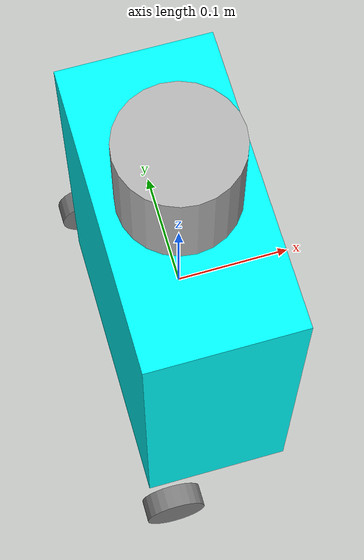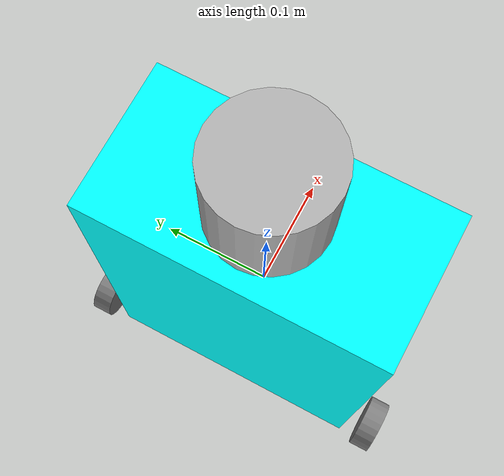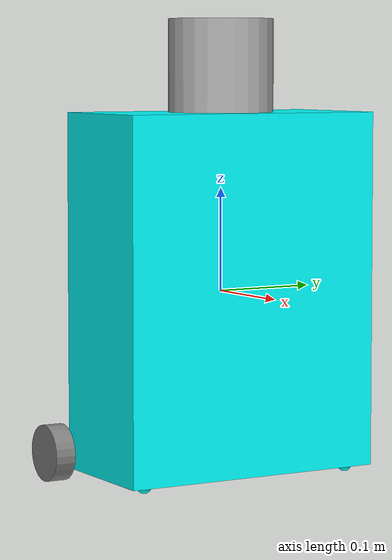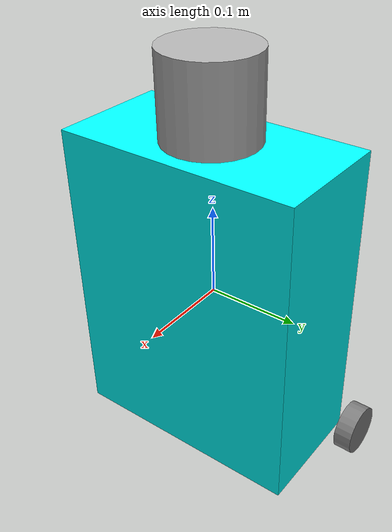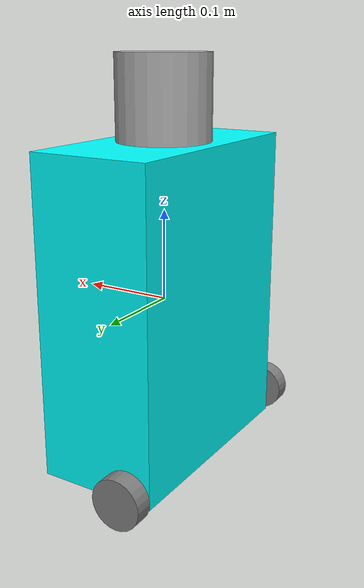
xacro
<?xml version="1.0"?>
<robot name="diff_drive" xmlns:xacro="http://ros.org/wiki/xacro">

  <!-- Define robot constants -->
  <xacro:property name="base_width" value="0.265"/>
  <xacro:property name="base_length" value="0.133"/>
  <xacro:property name="base_height" value="0.347"/>

  <xacro:property name="wheel_radius" value="0.02735"/>
  <xacro:property name="wheel_width" value="0.02"/>
  <xacro:property name="wheel_ygap" value="0.025"/>
  <xacro:property name="wheel_zoff" value="0.02"/>
  <xacro:property name="wheel_xoff" value="0.05"/>

  <xacro:property name="caster_xoff" value="0.05"/>
  <xacro:property name="caster_yoff" value="0.02"/>

  <!-- Define some commonly used intertial properties  -->
  <xacro:macro name="box_inertia" params="m w h d">
    <inertial>
      <origin xyz="0 0 0" rpy="${pi/2} 0 ${pi/2}"/>
      <mass value="${m}"/>
      <inertia ixx="${(m/12) * (h*h + d*d)}" ixy="0.0" ixz="0.0" iyy="${(m/12) * (w*w + d*d)}" iyz="0.0" izz="${(m/12) * (w*w + h*h)}"/>
    </inertial>
  </xacro:macro>

  <xacro:macro name="cylinder_inertia" params="m r h">
    <inertial>
      <origin xyz="0 0 0" rpy="${pi/2} 0 0" />
      <mass value="${m}"/>
      <inertia ixx="${(m/12) * (3*r*r + h*h)}" ixy = "0" ixz = "0" iyy="${(m/12) * (3*r*r + h*h)}" iyz = "0" izz="${(m/2) * (r*r)}"/>
    </inertial>
  </xacro:macro>

  <xacro:macro name="sphere_inertia" params="m r">
    <inertial>
      <mass value="${m}"/>
      <inertia ixx="${(2/5) * m * (r*r)}" ixy="0.0" ixz="0.0" iyy="${(2/5) * m * (r*r)}" iyz="0.0" izz="${(2/5) * m * (r*r)}"/>
    </inertial>
  </xacro:macro>

  <!-- Robot Base -->
  <link name="base_link">
    <visual>
      <geometry>
        <box size="${base_length} ${base_width} ${base_height}"/>
      </geometry>
      <material name="Cyan">
        <color rgba="0 1.0 1.0 1.0"/>
      </material>
    </visual>

    <collision>
      <geometry>
        <box size="${base_length} ${base_width} ${base_height}"/>
      </geometry>
    </collision>

    <xacro:box_inertia m="30" w="${base_width}" d="${base_length}" h="${base_height}"/>
  </link>

   <!-- Robot Footprint -->
  <link name="base_footprint">
  	<xacro:box_inertia m="0" w="0" d="0" h="0"/>
  </link>

  <joint name="base_joint" type="fixed">
    <parent link="base_link"/>
    <child link="base_footprint"/>
    <origin xyz="0.0 0.0 ${-(wheel_radius+wheel_zoff)}" rpy="0 0 0"/>
  </joint>

  <!-- Wheels -->
  <xacro:macro name="wheel" params="prefix x_reflect y_reflect">
    <link name="${prefix}_link">
      <visual>
        <origin xyz="0 0 0" rpy="${pi/2} 0 0"/>
        <geometry>
            <cylinder radius="${wheel_radius}" length="${wheel_width}"/>
        </geometry>
        <material name="Gray">
          <color rgba="0.5 0.5 0.5 1.0"/>
        </material>
      </visual>

      <collision>
        <origin xyz="0 0 0" rpy="${pi/2} 0 0"/>
        <geometry>
          <cylinder radius="${wheel_radius}" length="${wheel_width}"/>
        </geometry>
      </collision>

      <xacro:cylinder_inertia m="0.5" r="${wheel_radius}" h="${wheel_width}"/>
    </link>

    <joint name="${prefix}_joint" type="continuous">
      <parent link="base_link"/>
      <child link="${prefix}_link"/>
      <origin xyz="${x_reflect*wheel_xoff} ${y_reflect*(base_width/2+wheel_ygap)} ${-base_height/2+wheel_zoff}" rpy="0 0 0"/>
      <axis xyz="0 1 0"/>
    </joint>
  </xacro:macro>

  <xacro:wheel prefix="drivewhl_l" x_reflect="-1" y_reflect="1" />
  <xacro:wheel prefix="drivewhl_r" x_reflect="-1" y_reflect="-1" />

  <xacro:macro name="caster" params="prefix y_reflect">
    <link name="${prefix}_caster">
      <visual>
        <geometry>
          <sphere radius="${wheel_radius-wheel_zoff}"/>
        </geometry>
        <material name="Cyan">
          <color rgba="0 1.0 1.0 1.0"/>
        </material>
      </visual>

      <collision>
        <origin xyz="0 0 0" rpy="0 0 0"/>
        <geometry>
          <sphere radius="${wheel_radius-wheel_zoff}"/>
        </geometry>
        <surface>
          <friction>
            <mu>0</mu>
            <mu2>0</mu2>
          </friction>
        </surface>
      </collision>

      <xacro:sphere_inertia m="0.5" r="${wheel_radius-wheel_zoff}"/>
    </link>

    <joint name="${prefix}_caster_joint" type="continuous">
      <parent link="base_link"/>
      <child link="${prefix}_caster"/>
      <origin xyz="${caster_xoff} ${y_reflect*(base_width/2-caster_yoff)} ${-(base_height/2)}" rpy="0 0 0"/>
      <axis xyz="0 1 0"/>
    </joint>

  </xacro:macro>

  <xacro:caster prefix="left" y_reflect="-1" />
  <xacro:caster prefix="right" y_reflect="1" />

  <gazebo>
    <plugin name='diff_drive_contrl' filename='libgazebo_ros_diff_drive.so'>
      <ros>
        <namespace></namespace>
      </ros>

      <always_on>true</always_on>

      <updateRate>100</updateRate>
      <commandTopic>cmd_vel</commandTopic>

      <publishTf>true</publishTf>

      <!-- about odometry parameter-->
      <publishWheelTF>false</publishWheelTF>
      <publishWheelJointState>true</publishWheelJointState>
      <odometryTopic>odom</odometryTopic>

      <!-- wheels -->
      <leftJoint>drivewhl_l_joint</leftJoint>
      <rightJoint>drivewhl_r_joint</rightJoint>

      <!-- kinematics -->
      <wheelSeparation>0.4</wheelSeparation>
      <wheelDiameter>0.2</wheelDiameter>

      <!-- limits -->
      <wheelAcceleration>3</wheelAcceleration>
      <wheelTorque>50</wheelTorque>

      <!-- output -->
      <publish_odom>true</publish_odom>
      <publishOdomTF>false</publishOdomTF>
      <publishWheelTF>false</publishWheelTF>

      <odometryFrame>robot/odom</odometryFrame>
      <robotBaseFrame>robot/base_footprint</robotBaseFrame>

      <gaussianNoise>0.1</gaussianNoise>

    </plugin>

  </gazebo>

  <!-- setting up imu -->
  <link name="imu_link">
    <visual>
      <geometry>
        <box size="0.1 0.1 0.1"/>
      </geometry>
    </visual>

    <collision>
      <geometry>
        <box size="0.1 0.1 0.1"/>
      </geometry>
    </collision>

    <xacro:box_inertia m="0.1" w="0.1" d="0.1" h="0.1"/>
  </link>

  <joint name="imu_joint" type="fixed">
    <parent link="base_link"/>
    <child link="imu_link"/>
    <origin xyz="0 0 0.01"/>
  </joint>

  <gazebo reference="imu_link">
    <sensor type="imu" name="imu1">
      <plugin filename="libgazebo_ros_imu_sensor.so" name="imu_plugin">
        <topicName>imu</topicName>
        <bodyName>imu_link</bodyName>
        <updateRateHZ>10.0</updateRateHZ>
        <gaussianNoise>0.0</gaussianNoise>
        <xyzOffset>0 0 0</xyzOffset>
        <rpyOffset>0 0 0</rpyOffset>
        <frameName>robot/imu_link</frameName>
        <initialOrientationAsReference>false</initialOrientationAsReference>
      </plugin>
      <always_on>true</always_on>
      <update_rate>100</update_rate>
      <visualize>true</visualize>
    </sensor>
  </gazebo>

  <!-- setting up LiDAR -->
  <link name="lidar_link">
    <visual>
      <geometry>
        <cylinder radius="0.0508" length="0.09" />
      </geometry>
    </visual>

    <collision>
      <geometry>
        <cylinder radius="0.0508" length="0.09" />
      </geometry>
    </collision>

    <xacro:cylinder_inertia m="0.114" r="0.0508" h="0.09"/>
  </link>

  <joint name="lidar_joint" type="fixed">
    <parent link="base_link"/>
    <child link="lidar_link"/>
    <origin xyz="0.0 0.0 ${base_height/2 + 0.09/2}" rpy="0 0 0"/>
  </joint>

  <gazebo reference="lidar_link">
    <sensor type="ray" name="lidar">
      <ray>
        <scan>
          <horizontal>
            <samples>1800</samples>
            <resolution>1</resolution>
            <min_angle>0.000000</min_angle>
            <max_angle>6.280000</max_angle>
          </horizontal>
        </scan>
        <range>
          <min>0.280000</min>
          <max>3.7</max>
          <resolution>0.001000</resolution>
        </range>
        <noise>
          <type>gaussian</type>
          <mean>0.0</mean>
          <stddev>0.001</stddev>
        </noise>
      </ray>
      <plugin name="scan" filename="libgazebo_ros_laser.so">
        <topicName>scan</topicName>
        <frameName>robot/base_scan</frameName>
      </plugin>
      <always_on>true</always_on>
      <update_rate>10</update_rate>
      <visualize>false</visualize>
    </sensor>
  </gazebo>

</robot>
